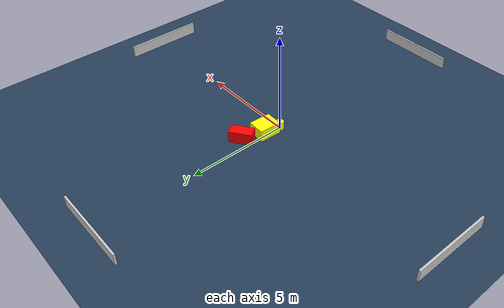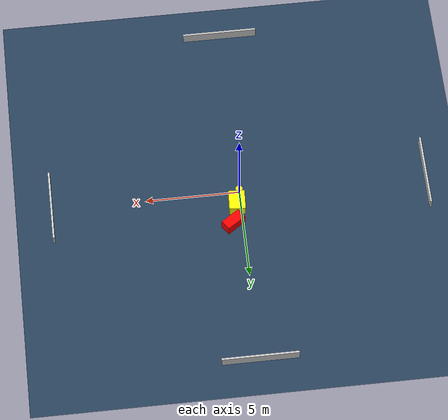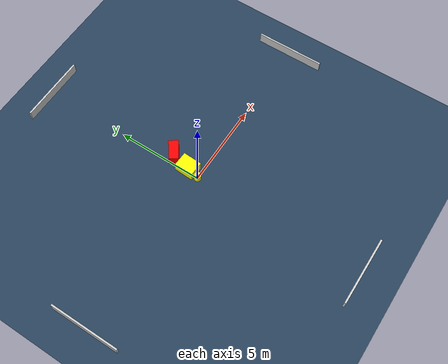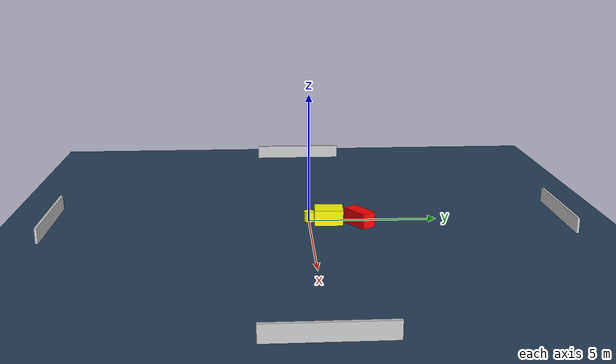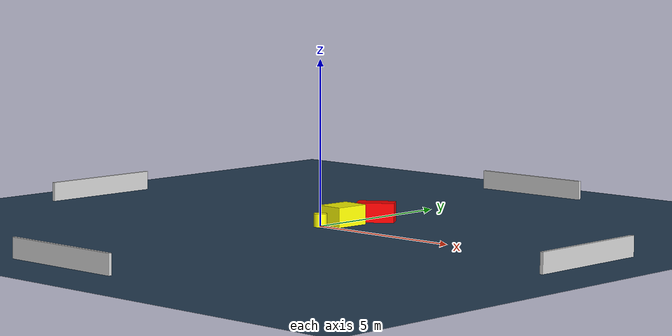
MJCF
<?xml version="1.0" ?>
<mujoco model="generated_environment">
  <option timestep="0.01" integrator="RK4" cone="elliptic"/>
  <default>
    <geom density="1"/>
  </default>
  <asset>
    <texture builtin="gradient" height="3072" name="skybox" rgb1="0.3 0.5 0.7" rgb2="0 0 0" type="skybox" width="512"/>
    <texture builtin="checker" height="300" name="groundplane" rgb1="0.2 0.3 0.4" rgb2="0.1 0.2 0.3" type="2d" width="300"/>
    <material name="groundplane" reflectance="0.2" texrepeat="5 5" texture="groundplane"/>
  </asset>
  <worldbody>
    <light dir="0 0 -1" directional="true" pos="0 0 1.5"/>
    <geom condim="3" friction="0.5 0.005 0.001" material="groundplane" name="floor" pos="0 0 0" size="0 0 0.05" type="plane"/>
    <body name="walls">
      <geom name="wall_1" condim="4" pos="-10.0 0.0 0.3" rgba="0.800000011920929 0.800000011920929 0.800000011920929 1.0" size="0.05 2.0 0.3" type="box"/>
      <geom name="wall_2" condim="4" pos="10.0 0.0 0.3" rgba="0.800000011920929 0.800000011920929 0.800000011920929 1.0" size="0.05 2.0 0.3" type="box"/>
      <geom name="wall_3" condim="4" pos="0.0 -10.0 0.3" rgba="0.800000011920929 0.800000011920929 0.800000011920929 1.0" size="2.0 0.05 0.3" type="box"/>
      <geom name="wall_4" condim="4" pos="0.0 10.0 0.3" rgba="0.800000011920929 0.800000011920929 0.800000011920929 1.0" size="2.0 0.05 0.3" type="box"/>
    </body>
    <body name="robot">
      <joint name="joint_x" type="slide" pos="0 0 0" axis="1 0 0"/>
      <joint name="joint_y" type="slide" pos="0 0 0" axis="0 1 0"/>
      <geom name="robot" type="cylinder" pos="0.0 0.0 0.2" size="0.2 0.2 0.0" mass="5.0" friction="1.0 0.005 0.0001" condim="4" rgba="1.0 1.0 0.0 1.0"/>
    </body>
    <body name="obstacle_1_movable">
      <geom name="obstacle_1_movable" condim="4" pos="0.19856247247973183 0.7562772330498954 0.3" euler="0 0 267.29507613537396" friction="0.0 0.005 0.001" rgba="1.0 1.0 0.0 1.0" size="0.5507890446448855 0.4319206360637693 0.3" type="box" mass="0.1"/>
      <joint type="free"/>
    </body>
    <body name="obstacle_2_static">
      <geom name="obstacle_2_static" condim="4" pos="0.51135812215123 1.9163355690712425 0.3" euler="0 0 304.6892596207454" friction="0.0 0.005 0.001" rgba="1.0 0.0 0.0 1.0" size="0.28447743378583357 0.5721843706812455 0.3" type="box"/>
    </body>
  </worldbody>
  <actuator>
    <motor name="actuator_x" joint="joint_x" gear="1" ctrlrange="-1 1"/>
    <motor name="actuator_y" joint="joint_y" gear="1" ctrlrange="-1 1"/>
  </actuator>
</mujoco>
